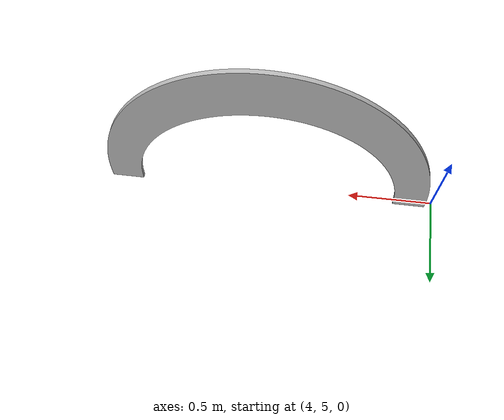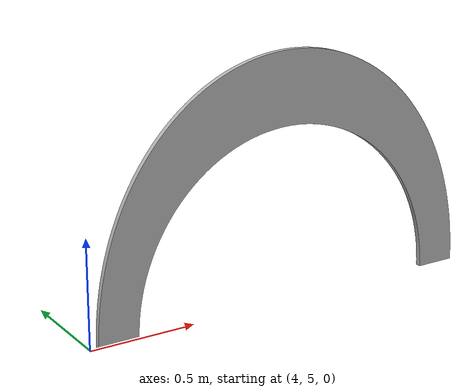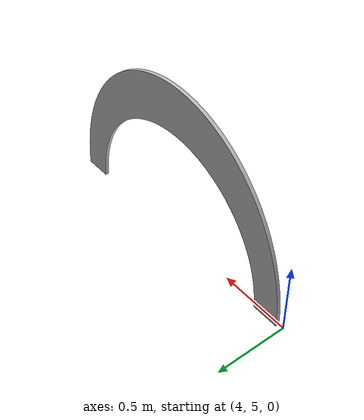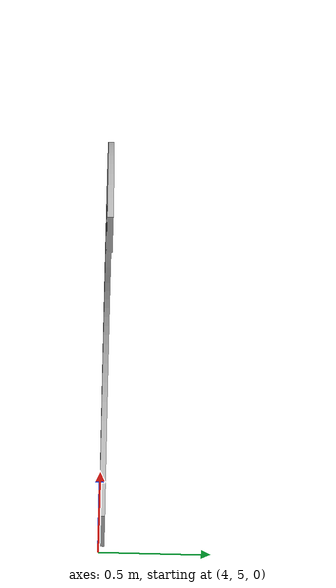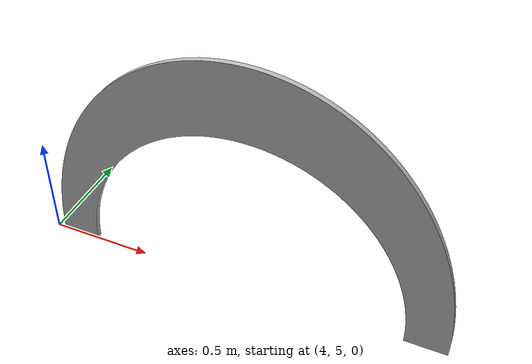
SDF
<?xml version="1.0" ?>
<sdf version="1.6">
  <model name='gate_round_big_no_color'>
    <static>1</static>
    <pose frame=''>5 5 0 0 0 0</pose>
    <link name='gate_round_big_no_color'>
      <visual name='gate'>
        <geometry>
          <mesh>
            <uri>/home/sim/ardupilot_docker/catkin_ws/src/drone_sim/models/gate_round_big_blue/gate_round_big_blue.dae</uri>
          </mesh>
        </geometry>
      </visual>
      <collision name='gate_collision_1'>
        <geometry>
          <mesh>
            <uri>/home/sim/ardupilot_docker/catkin_ws/src/drone_sim/models/gate_round_big_blue/gate_round_big_blue.dae</uri>
          </mesh>
        </geometry>
        <max_contacts>10</max_contacts>
        <surface>
          <contact>
            <ode/>
          </contact>
          <bounce/>
          <friction>
            <torsional>
              <ode/>
            </torsional>
            <ode/>
          </friction>
        </surface>
      </collision>
      <self_collide>0</self_collide>
      <enable_wind>0</enable_wind>
      <kinematic>0</kinematic>
    </link>
  </model>
</sdf>
